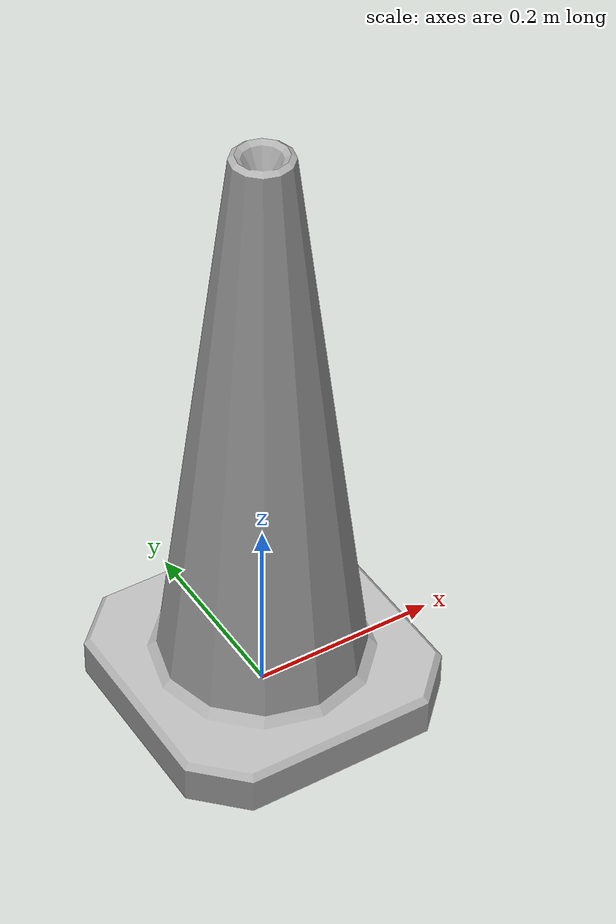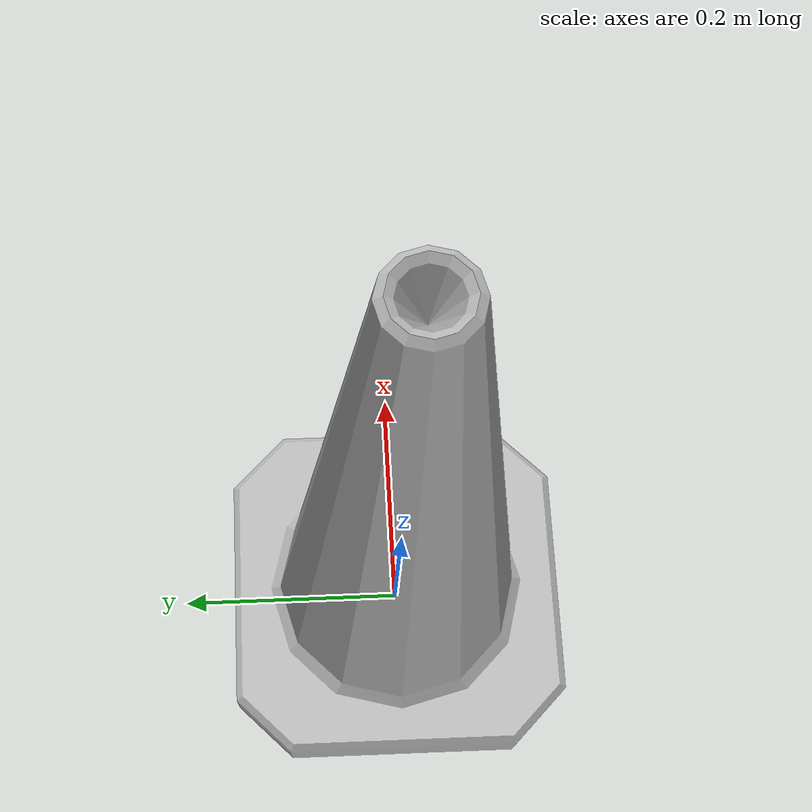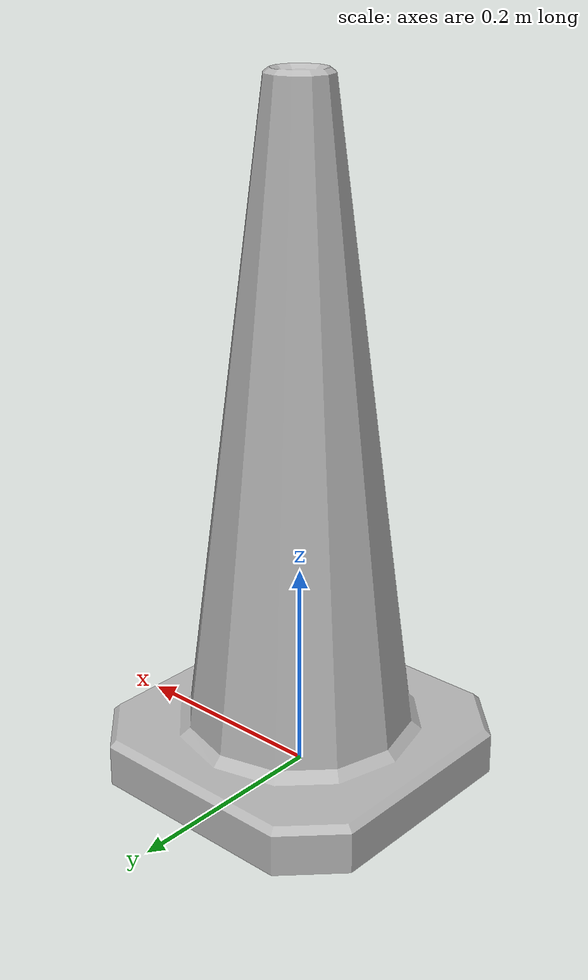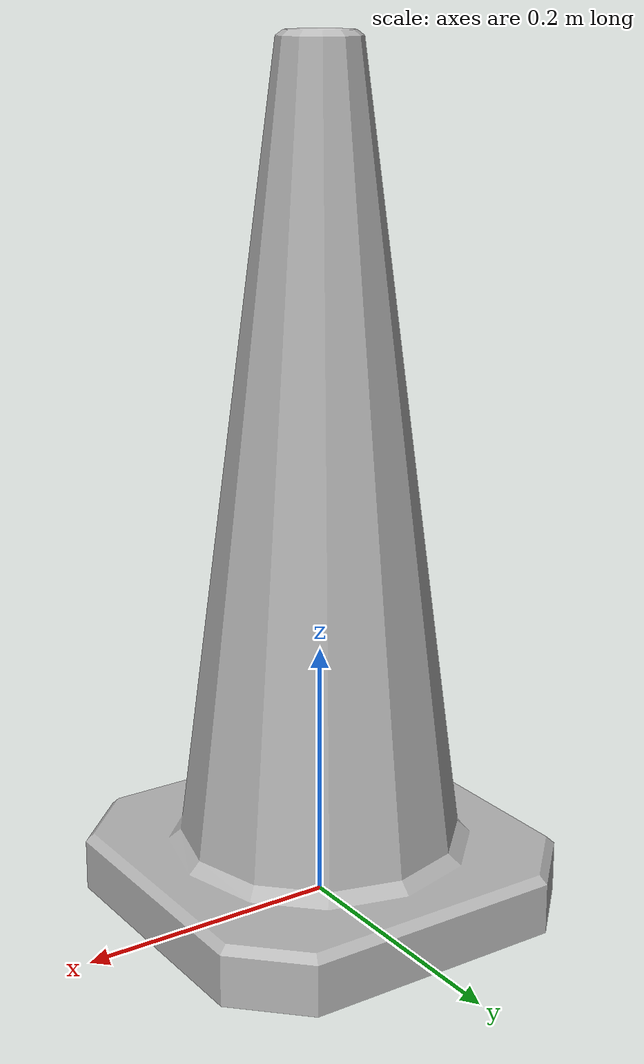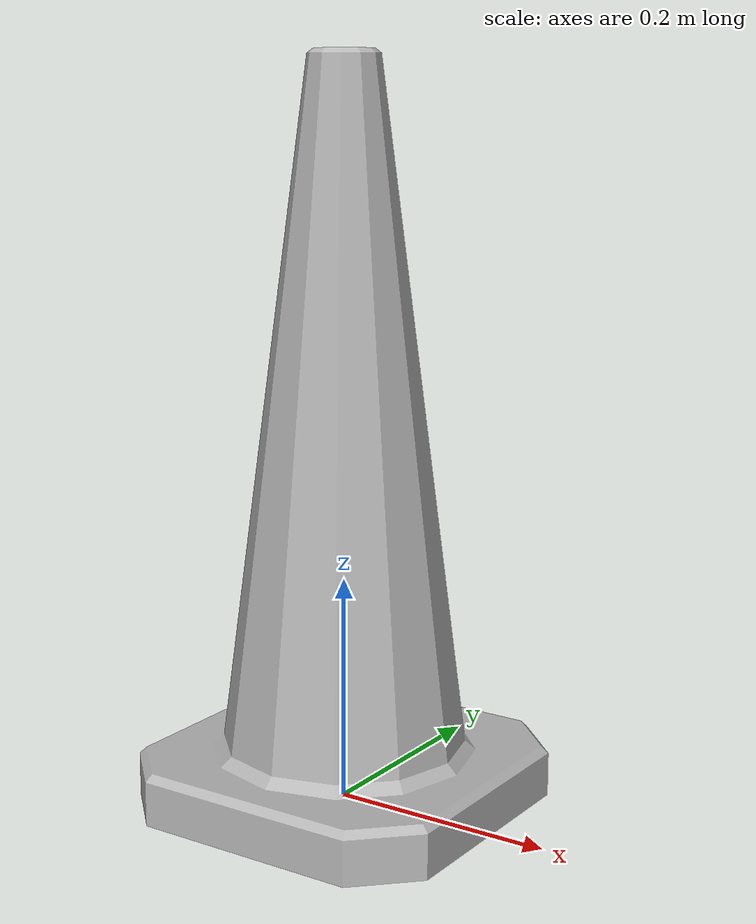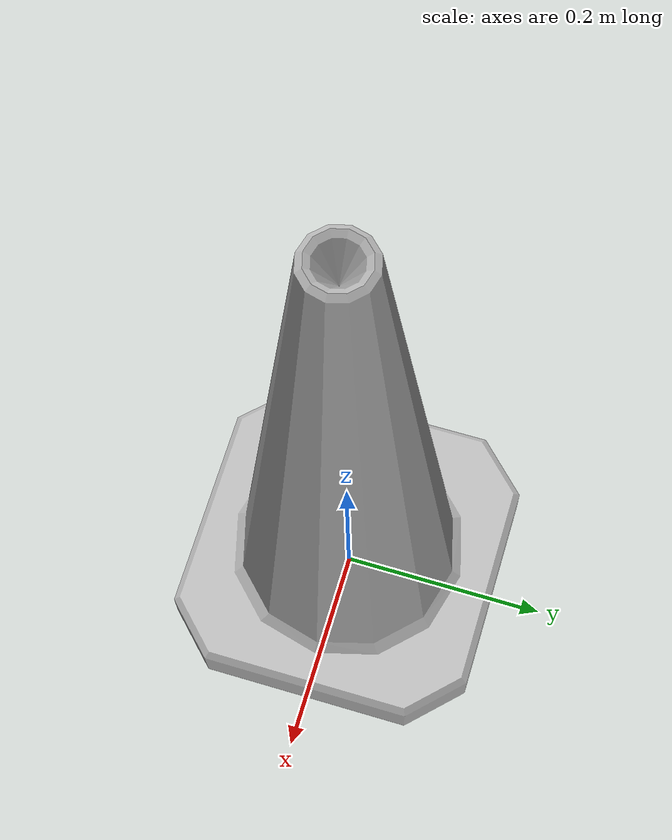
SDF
<?xml version="6.0" ?>
<sdf version="6.5">
  <model name="Construction Cone">
    <link name="link">
      <collision name="collision">
        <geometry>
          <mesh>
            <scale>6 6 6</scale>
            <uri>model://construction_cone/meshes/construction_cone.dae</uri>
          </mesh>
        </geometry>
      </collision>
      <visual name="visual">
        <geometry>
          <mesh>
            <scale>6 6 6</scale>
            <uri>model://construction_cone/meshes/construction_cone.dae</uri>
          </mesh>
        </geometry>
      </visual>
    </link>
  </model>
</sdf>
